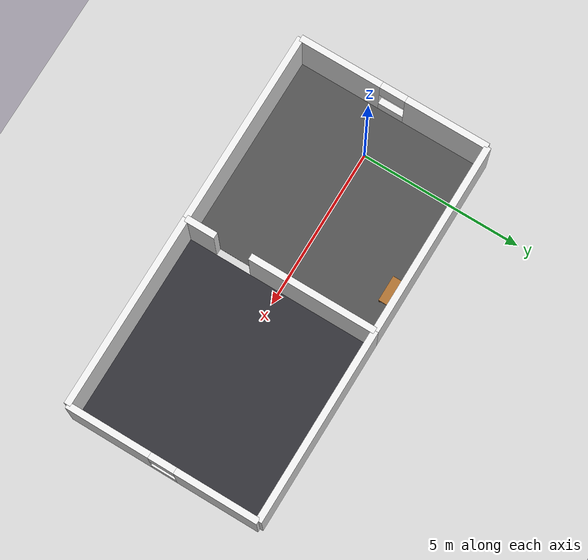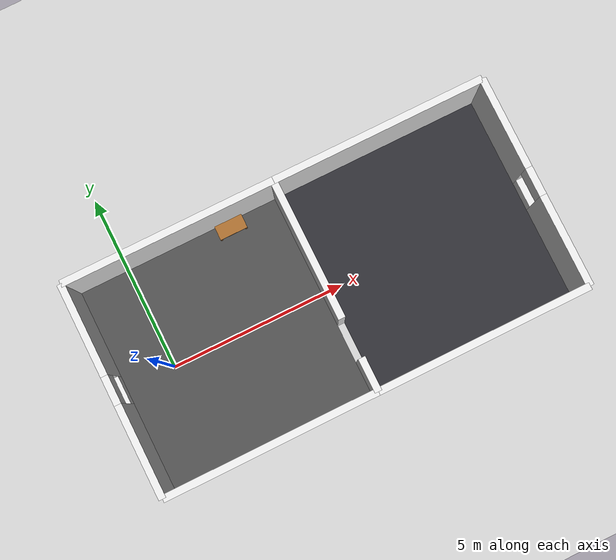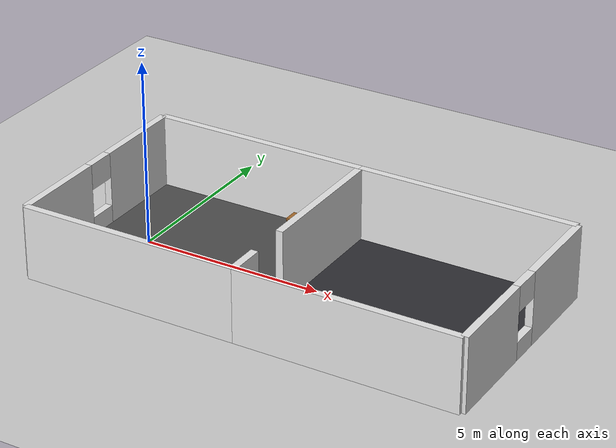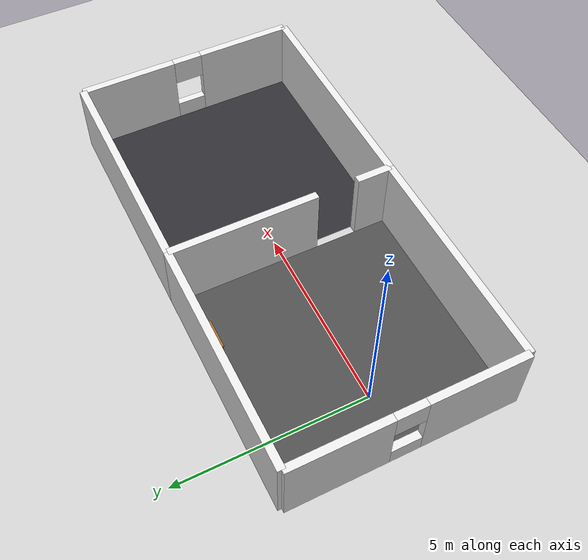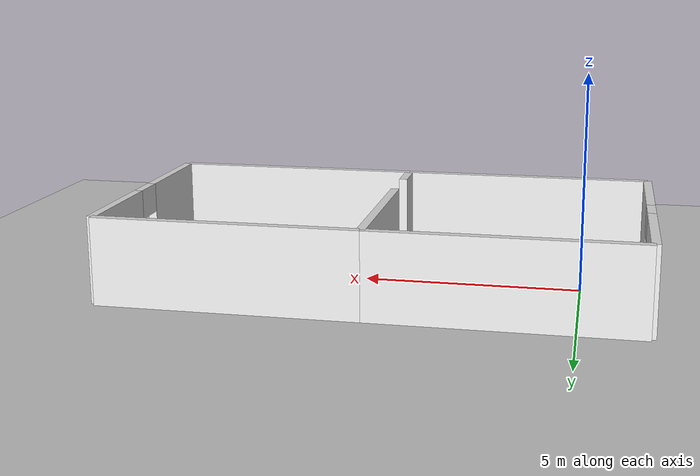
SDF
<sdf version="1.6">
 <world name="locobot_two_room_env">
  <gravity>0 0 -9.81</gravity>
  <physics type="ode">
   <real_time_update_rate>500.0</real_time_update_rate>
   <max_step_size>0.002</max_step_size>
   <real_time_factor>1</real_time_factor>
  </physics>
  <scene>
   <ambient>0.6 0.6 0.6 1</ambient>
   <background>0.87 0.92 0.98 1</background>
   <shadows>false</shadows>
  </scene>
  <include><uri>model://sun</uri></include>
  <include><uri>model://ground_plane</uri></include>
  <model name="wall_north">
   <static>true</static>
   <pose>1.5 3.0 1.0 0 0 0</pose>
   <link name="link">
    <collision name="c"><geometry><box><size>6.0 0.2 2.0</size></box></geometry></collision>
    <visual name="v">
     <geometry><box><size>6.0 0.2 2.0</size></box></geometry>
     <material><ambient>0.8 0.8 0.8 1</ambient><diffuse>0.9 0.9 0.9 1</diffuse></material>
    </visual>
   </link>
  </model>
  <model name="wall_south">
   <static>true</static>
   <pose>1.5 -3.0 1.0 0 0 0</pose>
   <link name="link">
    <collision name="c"><geometry><box><size>6.0 0.2 2.0</size></box></geometry></collision>
    <visual name="v">
     <geometry><box><size>6.0 0.2 2.0</size></box></geometry>
     <material><ambient>0.8 0.8 0.8 1</ambient><diffuse>0.9 0.9 0.9 1</diffuse></material>
    </visual>
   </link>
  </model>
  <model name="wall_east_a">
   <static>true</static>
   <pose>4.5 -2.525 1.0 0 0 0</pose>
   <link name="link">
    <collision name="c"><geometry><box><size>0.2 0.95 2.0</size></box></geometry></collision>
    <visual name="v">
     <geometry><box><size>0.2 0.95 2.0</size></box></geometry>
     <material><ambient>0.8 0.8 0.8 1</ambient><diffuse>0.9 0.9 0.9 1</diffuse></material>
    </visual>
   </link>
  </model>
  <model name="wall_east_b">
   <static>true</static>
   <pose>4.5 1.025 1.0 0 0 0</pose>
   <link name="link">
    <collision name="c"><geometry><box><size>0.2 3.95 2.0</size></box></geometry></collision>
    <visual name="v">
     <geometry><box><size>0.2 3.95 2.0</size></box></geometry>
     <material><ambient>0.8 0.8 0.8 1</ambient><diffuse>0.9 0.9 0.9 1</diffuse></material>
    </visual>
   </link>
  </model>
  <model name="wall_west_a">
   <static>true</static>
   <pose>-1.5 -1.7 1.0 0 0 0</pose>
   <link name="link">
    <collision name="c"><geometry><box><size>0.2 2.6 2.0</size></box></geometry></collision>
    <visual name="v">
     <geometry><box><size>0.2 2.6 2.0</size></box></geometry>
     <material><ambient>0.8 0.8 0.8 1</ambient><diffuse>0.9 0.9 0.9 1</diffuse></material>
    </visual>
   </link>
  </model>
  <model name="wall_west_b">
   <static>true</static>
   <pose>-1.5 1.7 1.0 0 0 0</pose>
   <link name="link">
    <collision name="c"><geometry><box><size>0.2 2.6 2.0</size></box></geometry></collision>
    <visual name="v">
     <geometry><box><size>0.2 2.6 2.0</size></box></geometry>
     <material><ambient>0.8 0.8 0.8 1</ambient><diffuse>0.9 0.9 0.9 1</diffuse></material>
    </visual>
   </link>
  </model>
  <model name="wall_west_sill">
   <static>true</static>
   <pose>-1.5 0 0.25 0 0 0</pose>
   <link name="link">
    <collision name="c"><geometry><box><size>0.2 0.8 0.5</size></box></geometry></collision>
    <visual name="v">
     <geometry><box><size>0.2 0.8 0.5</size></box></geometry>
     <material><ambient>0.8 0.8 0.8 1</ambient><diffuse>0.9 0.9 0.9 1</diffuse></material>
    </visual>
   </link>
  </model>
  <model name="wall_west_lintel">
   <static>true</static>
   <pose>-1.5 0 1.65 0 0 0</pose>
   <link name="link">
    <collision name="c"><geometry><box><size>0.2 0.8 0.7</size></box></geometry></collision>
    <visual name="v">
     <geometry><box><size>0.2 0.8 0.7</size></box></geometry>
     <material><ambient>0.8 0.8 0.8 1</ambient><diffuse>0.9 0.9 0.9 1</diffuse></material>
    </visual>
   </link>
  </model>
  <model name="pavement_room_a">
   <static>true</static>
   <pose>1.5 0 0.005 0 0 0</pose>
   <link name="link">
    <visual name="v">
     <geometry><box><size>5.8 5.8 0.01</size></box></geometry>
     <material>
      <script>
       <uri>model://asphalt_plane/materials/scripts</uri>
       <uri>model://asphalt_plane/materials/textures</uri>
       <name>vrc/asphalt</name>
      </script>
     </material>
    </visual>
   </link>
  </model>
  <model name="table">
   <static>true</static>
   <pose>3.00 2.70 0 0 0 1.5708</pose>
   <link name="top">
    <pose>0 0 0.225 0 0 0</pose>
    <collision name="top_col"><geometry><box><size>0.4 0.8 0.05</size></box></geometry></collision>
    <visual name="top_vis">
     <geometry><box><size>0.4 0.8 0.05</size></box></geometry>
     <material><ambient>0.55 0.35 0.15 1</ambient><diffuse>0.65 0.42 0.18 1</diffuse></material>
    </visual>
   </link>
   <link name="leg_fl">
    <pose>-0.165 -0.365 0.10 0 0 0</pose>
    <collision name="c"><geometry><box><size>0.05 0.05 0.20</size></box></geometry></collision>
    <visual name="v">
     <geometry><box><size>0.05 0.05 0.20</size></box></geometry>
     <material><ambient>0.4 0.25 0.1 1</ambient><diffuse>0.5 0.3 0.12 1</diffuse></material>
    </visual>
   </link>
   <link name="leg_fr">
    <pose>-0.165  0.365 0.10 0 0 0</pose>
    <collision name="c"><geometry><box><size>0.05 0.05 0.20</size></box></geometry></collision>
    <visual name="v">
     <geometry><box><size>0.05 0.05 0.20</size></box></geometry>
     <material><ambient>0.4 0.25 0.1 1</ambient><diffuse>0.5 0.3 0.12 1</diffuse></material>
    </visual>
   </link>
   <link name="leg_bl">
    <pose>0.165 -0.365 0.10 0 0 0</pose>
    <collision name="c"><geometry><box><size>0.05 0.05 0.20</size></box></geometry></collision>
    <visual name="v">
     <geometry><box><size>0.05 0.05 0.20</size></box></geometry>
     <material><ambient>0.4 0.25 0.1 1</ambient><diffuse>0.5 0.3 0.12 1</diffuse></material>
    </visual>
   </link>
   <link name="leg_br">
    <pose>0.165  0.365 0.10 0 0 0</pose>
    <collision name="c"><geometry><box><size>0.05 0.05 0.20</size></box></geometry></collision>
    <visual name="v">
     <geometry><box><size>0.05 0.05 0.20</size></box></geometry>
     <material><ambient>0.4 0.25 0.1 1</ambient><diffuse>0.5 0.3 0.12 1</diffuse></material>
    </visual>
   </link>
  </model>
  <model name="wall_b_north">
   <static>true</static>
   <pose>7.5 3.0 1.0 0 0 0</pose>
   <link name="link">
    <collision name="c"><geometry><box><size>6.0 0.2 2.0</size></box></geometry></collision>
    <visual name="v">
     <geometry><box><size>6.0 0.2 2.0</size></box></geometry>
     <material><ambient>0.8 0.8 0.8 1</ambient><diffuse>0.9 0.9 0.9 1</diffuse></material>
    </visual>
   </link>
  </model>
  <model name="wall_b_south">
   <static>true</static>
   <pose>7.5 -3.0 1.0 0 0 0</pose>
   <link name="link">
    <collision name="c"><geometry><box><size>6.0 0.2 2.0</size></box></geometry></collision>
    <visual name="v">
     <geometry><box><size>6.0 0.2 2.0</size></box></geometry>
     <material><ambient>0.8 0.8 0.8 1</ambient><diffuse>0.9 0.9 0.9 1</diffuse></material>
    </visual>
   </link>
  </model>
  <model name="wall_b_east_a">
   <static>true</static>
   <pose>10.5 -1.7 1.0 0 0 0</pose>
   <link name="link">
    <collision name="c"><geometry><box><size>0.2 2.6 2.0</size></box></geometry></collision>
    <visual name="v">
     <geometry><box><size>0.2 2.6 2.0</size></box></geometry>
     <material><ambient>0.8 0.8 0.8 1</ambient><diffuse>0.9 0.9 0.9 1</diffuse></material>
    </visual>
   </link>
  </model>
  <model name="wall_b_east_b">
   <static>true</static>
   <pose>10.5 1.7 1.0 0 0 0</pose>
   <link name="link">
    <collision name="c"><geometry><box><size>0.2 2.6 2.0</size></box></geometry></collision>
    <visual name="v">
     <geometry><box><size>0.2 2.6 2.0</size></box></geometry>
     <material><ambient>0.8 0.8 0.8 1</ambient><diffuse>0.9 0.9 0.9 1</diffuse></material>
    </visual>
   </link>
  </model>
  <model name="wall_b_east_sill">
   <static>true</static>
   <pose>10.5 0 0.25 0 0 0</pose>
   <link name="link">
    <collision name="c"><geometry><box><size>0.2 0.8 0.5</size></box></geometry></collision>
    <visual name="v">
     <geometry><box><size>0.2 0.8 0.5</size></box></geometry>
     <material><ambient>0.8 0.8 0.8 1</ambient><diffuse>0.9 0.9 0.9 1</diffuse></material>
    </visual>
   </link>
  </model>
  <model name="wall_b_east_lintel">
   <static>true</static>
   <pose>10.5 0 1.65 0 0 0</pose>
   <link name="link">
    <collision name="c"><geometry><box><size>0.2 0.8 0.7</size></box></geometry></collision>
    <visual name="v">
     <geometry><box><size>0.2 0.8 0.7</size></box></geometry>
     <material><ambient>0.8 0.8 0.8 1</ambient><diffuse>0.9 0.9 0.9 1</diffuse></material>
    </visual>
   </link>
  </model>
  <model name="carpet_room_b">
   <static>true</static>
   <pose>7.5 0 0.005 0 0 0</pose>
   <link name="link">
    <visual name="v">
     <geometry><box><size>5.8 5.8 0.01</size></box></geometry>
     <material><ambient>0.15 0.15 0.17 1</ambient><diffuse>0.18 0.18 0.2 1</diffuse></material>
    </visual>
   </link>
  </model>
 </world>
</sdf>
